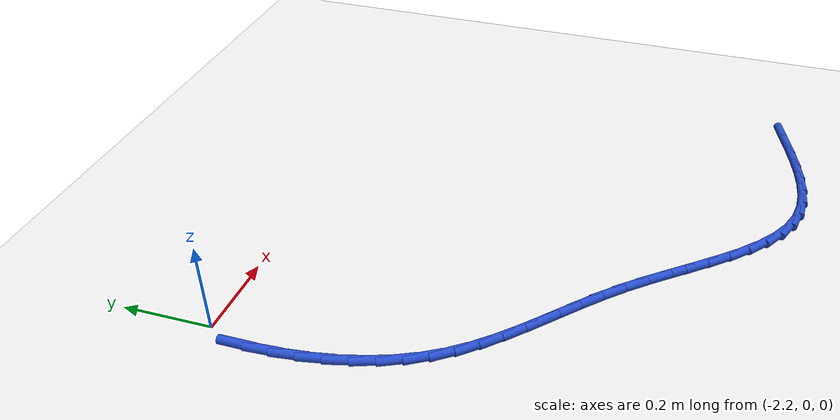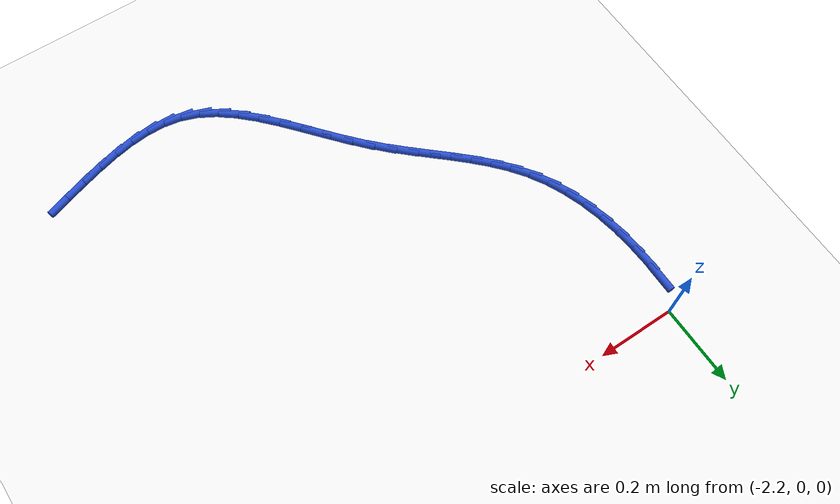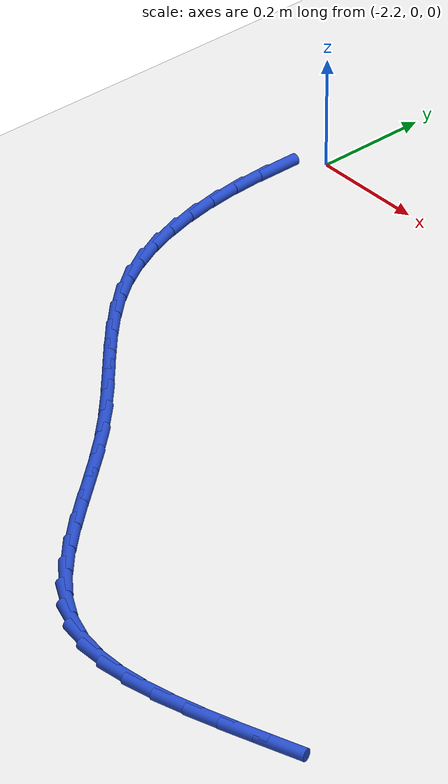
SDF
<sdf version="1.6">
 <world name="default">
  <model name="ground_plane">
   <static>1</static>
   <link name="link">
    <collision name="collision">
     <geometry><plane><normal>0 0 1</normal><size>100 100</size></plane></geometry>
     <surface><friction><ode><mu>100</mu><mu2>50</mu2></ode></friction></surface>
    </collision>
    <visual name="visual">
     <cast_shadows>0</cast_shadows>
     <geometry><plane><normal>0 0 1</normal><size>100 100</size></plane></geometry>
     <material>
      <script><uri>file://media/materials/scripts/gazebo.material</uri><name>Gazebo/WhiteGlow</name></script>
     </material>
    </visual>
   </link>
  </model>
  <model name="line">
   <link name="link_66">
    <pose>-2.2347366018024912 -0.07713305803702135 0.01 0 1.57 1.566625807912134</pose>
    <collision name="collision">
     <geometry><cylinder><radius>0.01</radius><length>0.08</length></cylinder></geometry>
    </collision>
    <visual name="visual">
     <material>
      <script><name>Gazebo/Blue</name><uri>file://media/materials/scripts/gazebo.material</uri></script>
     </material>
     <geometry><cylinder><radius>0.01</radius><length>0.08</length></cylinder></geometry>
    </visual>
   </link>
   <link name="link_67">
    <pose>-2.2349681033204614 -0.1326417806420662 0.01 0 1.57 -1.516333764548325</pose>
    <collision name="collision">
     <geometry><cylinder><radius>0.01</radius><length>0.08</length></cylinder></geometry>
    </collision>
    <visual name="visual">
     <material>
      <script><name>Gazebo/Blue</name><uri>file://media/materials/scripts/gazebo.material</uri></script>
     </material>
     <geometry><cylinder><radius>0.01</radius><length>0.08</length></cylinder></geometry>
    </visual>
   </link>
   <link name="link_68">
    <pose>-2.2319905329160266 -0.18725958974599724 0.01 0 1.57 -1.452149673449221</pose>
    <collision name="collision">
     <geometry><cylinder><radius>0.01</radius><length>0.08</length></cylinder></geometry>
    </collision>
    <visual name="visual">
     <material>
      <script><name>Gazebo/Blue</name><uri>file://media/materials/scripts/gazebo.material</uri></script>
     </material>
     <geometry><cylinder><radius>0.01</radius><length>0.08</length></cylinder></geometry>
    </visual>
   </link>
   <link name="link_69">
    <pose>-2.225624119887557 -0.24066616620373998 0.01 0 1.57 -1.3815692075701236</pose>
    <collision name="collision">
     <geometry><cylinder><radius>0.01</radius><length>0.08</length></cylinder></geometry>
    </collision>
    <visual name="visual">
     <material>
      <script><name>Gazebo/Blue</name><uri>file://media/materials/scripts/gazebo.material</uri></script>
     </material>
     <geometry><cylinder><radius>0.01</radius><length>0.08</length></cylinder></geometry>
    </visual>
   </link>
   <link name="link_70">
    <pose>-2.215689093533421 -0.2925411908702197 0.01 0 1.57 -1.3037865418248022</pose>
    <collision name="collision">
     <geometry><cylinder><radius>0.01</radius><length>0.08</length></cylinder></geometry>
    </collision>
    <visual name="visual">
     <material>
      <script><name>Gazebo/Blue</name><uri>file://media/materials/scripts/gazebo.material</uri></script>
     </material>
     <geometry><cylinder><radius>0.01</radius><length>0.08</length></cylinder></geometry>
    </visual>
   </link>
   <link name="link_71">
    <pose>-2.2020056831519885 -0.34256434460035956 0.01 0 1.57 -1.2181323554261085</pose>
    <collision name="collision">
     <geometry><cylinder><radius>0.01</radius><length>0.08</length></cylinder></geometry>
    </collision>
    <visual name="visual">
     <material>
      <script><name>Gazebo/Blue</name><uri>file://media/materials/scripts/gazebo.material</uri></script>
     </material>
     <geometry><cylinder><radius>0.01</radius><length>0.08</length></cylinder></geometry>
    </visual>
   </link>
   <link name="link_72">
    <pose>-2.1843941180416304 -0.39041530824908494 0.01 0 1.57 -1.1242186961335248</pose>
    <collision name="collision">
     <geometry><cylinder><radius>0.01</radius><length>0.08</length></cylinder></geometry>
    </collision>
    <visual name="visual">
     <material>
      <script><name>Gazebo/Blue</name><uri>file://media/materials/scripts/gazebo.material</uri></script>
     </material>
     <geometry><cylinder><radius>0.01</radius><length>0.08</length></cylinder></geometry>
    </visual>
   </link>
   <link name="link_73">
    <pose>-2.1626746275007145 -0.43577376267132034 0.01 0 1.57 -1.0221410222217915</pose>
    <collision name="collision">
     <geometry><cylinder><radius>0.01</radius><length>0.08</length></cylinder></geometry>
    </collision>
    <visual name="visual">
     <material>
      <script><name>Gazebo/Blue</name><uri>file://media/materials/scripts/gazebo.material</uri></script>
     </material>
     <geometry><cylinder><radius>0.01</radius><length>0.08</length></cylinder></geometry>
    </visual>
   </link>
   <link name="link_74">
    <pose>-2.136667966802116 -0.47831998935907033 0.01 0 1.57 -0.9197344098693156</pose>
    <collision name="collision">
     <geometry><cylinder><radius>0.01</radius><length>0.08</length></cylinder></geometry>
    </collision>
    <visual name="visual">
     <material>
      <script><name>Gazebo/Blue</name><uri>file://media/materials/scripts/gazebo.material</uri></script>
     </material>
     <geometry><cylinder><radius>0.01</radius><length>0.08</length></cylinder></geometry>
    </visual>
   </link>
   <link name="link_75">
    <pose>-2.10643235777262 -0.5180054449592808 0.01 0 1.57 -0.8369834766279696</pose>
    <collision name="collision">
     <geometry><cylinder><radius>0.01</radius><length>0.08</length></cylinder></geometry>
    </collision>
    <visual name="visual">
     <material>
      <script><name>Gazebo/Blue</name><uri>file://media/materials/scripts/gazebo.material</uri></script>
     </material>
     <geometry><cylinder><radius>0.01</radius><length>0.08</length></cylinder></geometry>
    </visual>
   </link>
   <link name="link_76">
    <pose>-2.0726375709729994 -0.5554799447717604 0.01 0 1.57 -0.7776468500098036</pose>
    <collision name="collision">
     <geometry><cylinder><radius>0.01</radius><length>0.08</length></cylinder></geometry>
    </collision>
    <visual name="visual">
     <material>
      <script><name>Gazebo/Blue</name><uri>file://media/materials/scripts/gazebo.material</uri></script>
     </material>
     <geometry><cylinder><radius>0.01</radius><length>0.08</length></cylinder></geometry>
    </visual>
   </link>
   <link name="link_77">
    <pose>-2.0360504801131163 -0.5915041911288976 0.01 0 1.57 -0.7411005974425477</pose>
    <collision name="collision">
     <geometry><cylinder><radius>0.01</radius><length>0.08</length></cylinder></geometry>
    </collision>
    <visual name="visual">
     <material>
      <script><name>Gazebo/Blue</name><uri>file://media/materials/scripts/gazebo.material</uri></script>
     </material>
     <geometry><cylinder><radius>0.01</radius><length>0.08</length></cylinder></geometry>
    </visual>
   </link>
   <link name="link_78">
    <pose>-1.9974379589028317 -0.6268388863630805 0.01 0 1.57 -0.7261501876739846</pose>
    <collision name="collision">
     <geometry><cylinder><radius>0.01</radius><length>0.08</length></cylinder></geometry>
    </collision>
    <visual name="visual">
     <material>
      <script><name>Gazebo/Blue</name><uri>file://media/materials/scripts/gazebo.material</uri></script>
     </material>
     <geometry><cylinder><radius>0.01</radius><length>0.08</length></cylinder></geometry>
    </visual>
   </link>
   <link name="link_79">
    <pose>-1.9575668810520095 -0.6622447328066958 0.01 0 1.57 -0.7315984849027605</pose>
    <collision name="collision">
     <geometry><cylinder><radius>0.01</radius><length>0.08</length></cylinder></geometry>
    </collision>
    <visual name="visual">
     <material>
      <script><name>Gazebo/Blue</name><uri>file://media/materials/scripts/gazebo.material</uri></script>
     </material>
     <geometry><cylinder><radius>0.01</radius><length>0.08</length></cylinder></geometry>
    </visual>
   </link>
   <link name="link_80">
    <pose>-1.9172041202705101 -0.6984824327921314 0.01 0 1.57 -0.7564358184620906</pose>
    <collision name="collision">
     <geometry><cylinder><radius>0.01</radius><length>0.08</length></cylinder></geometry>
    </collision>
    <visual name="visual">
     <material>
      <script><name>Gazebo/Blue</name><uri>file://media/materials/scripts/gazebo.material</uri></script>
     </material>
     <geometry><cylinder><radius>0.01</radius><length>0.08</length></cylinder></geometry>
    </visual>
   </link>
   <link name="link_81">
    <pose>-1.8771165502681966 -0.736312688651775 0.01 0 1.57 -0.7994552065078326</pose>
    <collision name="collision">
     <geometry><cylinder><radius>0.01</radius><length>0.08</length></cylinder></geometry>
    </collision>
    <visual name="visual">
     <material>
      <script><name>Gazebo/Blue</name><uri>file://media/materials/scripts/gazebo.material</uri></script>
     </material>
     <geometry><cylinder><radius>0.01</radius><length>0.08</length></cylinder></geometry>
    </visual>
   </link>
   <link name="link_82">
    <pose>-1.838061916970928 -0.7764810361633876 0.01 0 1.57 -0.844306440397865</pose>
    <collision name="collision">
     <geometry><cylinder><radius>0.01</radius><length>0.08</length></cylinder></geometry>
    </collision>
    <visual name="visual">
     <material>
      <script><name>Gazebo/Blue</name><uri>file://media/materials/scripts/gazebo.material</uri></script>
     </material>
     <geometry><cylinder><radius>0.01</radius><length>0.08</length></cylinder></geometry>
    </visual>
   </link>
   <link name="link_83">
    <pose>-1.8003253463726279 -0.8189477146939397 0.01 0 1.57 -0.8691442845476788</pose>
    <collision name="collision">
     <geometry><cylinder><radius>0.01</radius><length>0.08</length></cylinder></geometry>
    </collision>
    <visual name="visual">
     <material>
      <script><name>Gazebo/Blue</name><uri>file://media/materials/scripts/gazebo.material</uri></script>
     </material>
     <geometry><cylinder><radius>0.01</radius><length>0.08</length></cylinder></geometry>
    </visual>
   </link>
   <link name="link_84">
    <pose>-1.7634995765437713 -0.862522504828584 0.01 0 1.57 -0.8732130105804633</pose>
    <collision name="collision">
     <geometry><cylinder><radius>0.01</radius><length>0.08</length></cylinder></geometry>
    </collision>
    <visual name="visual">
     <material>
      <script><name>Gazebo/Blue</name><uri>file://media/materials/scripts/gazebo.material</uri></script>
     </material>
     <geometry><cylinder><radius>0.01</radius><length>0.08</length></cylinder></geometry>
    </visual>
   </link>
   <link name="link_85">
    <pose>-1.7271222451387844 -0.9059236333350591 0.01 0 1.57 -0.85618414837233</pose>
    <collision name="collision">
     <geometry><cylinder><radius>0.01</radius><length>0.08</length></cylinder></geometry>
    </collision>
    <visual name="visual">
     <material>
      <script><name>Gazebo/Blue</name><uri>file://media/materials/scripts/gazebo.material</uri></script>
     </material>
     <geometry><cylinder><radius>0.01</radius><length>0.08</length></cylinder></geometry>
    </visual>
   </link>
   <link name="link_86">
    <pose>-1.6907309898120961 -0.9478693269811054 0.01 0 1.57 -0.8161595690180491</pose>
    <collision name="collision">
     <geometry><cylinder><radius>0.01</radius><length>0.08</length></cylinder></geometry>
    </collision>
    <visual name="visual">
     <material>
      <script><name>Gazebo/Blue</name><uri>file://media/materials/scripts/gazebo.material</uri></script>
     </material>
     <geometry><cylinder><radius>0.01</radius><length>0.08</length></cylinder></geometry>
    </visual>
   </link>
   <link name="link_87">
    <pose>-1.653863448218133 -0.9870778125344597 0.01 0 1.57 -0.7495663786086596</pose>
    <collision name="collision">
     <geometry><cylinder><radius>0.01</radius><length>0.08</length></cylinder></geometry>
    </collision>
    <visual name="visual">
     <material>
      <script><name>Gazebo/Blue</name><uri>file://media/materials/scripts/gazebo.material</uri></script>
     </material>
     <geometry><cylinder><radius>0.01</radius><length>0.08</length></cylinder></geometry>
    </visual>
   </link>
   <link name="link_88">
    <pose>-1.6160572580113228 -1.0222673167628624 0.01 0 1.57 -0.6513444935324271</pose>
    <collision name="collision">
     <geometry><cylinder><radius>0.01</radius><length>0.08</length></cylinder></geometry>
    </collision>
    <visual name="visual">
     <material>
      <script><name>Gazebo/Blue</name><uri>file://media/materials/scripts/gazebo.material</uri></script>
     </material>
     <geometry><cylinder><radius>0.01</radius><length>0.08</length></cylinder></geometry>
    </visual>
   </link>
   <link name="link_89">
    <pose>-1.5768500568460935 -1.052156066434052 0.01 0 1.57 -0.5161550852151517</pose>
    <collision name="collision">
     <geometry><cylinder><radius>0.01</radius><length>0.08</length></cylinder></geometry>
    </collision>
    <visual name="visual">
     <material>
      <script><name>Gazebo/Blue</name><uri>file://media/materials/scripts/gazebo.material</uri></script>
     </material>
     <geometry><cylinder><radius>0.01</radius><length>0.08</length></cylinder></geometry>
    </visual>
   </link>
   <link name="link_90">
    <pose>-1.5357794823768716 -1.075462288315767 0.01 0 1.57 -0.34225911887109234</pose>
    <collision name="collision">
     <geometry><cylinder><radius>0.01</radius><length>0.08</length></cylinder></geometry>
    </collision>
    <visual name="visual">
     <material>
      <script><name>Gazebo/Blue</name><uri>file://media/materials/scripts/gazebo.material</uri></script>
     </material>
     <geometry><cylinder><radius>0.01</radius><length>0.08</length></cylinder></geometry>
    </visual>
   </link>
   <link name="link_91">
    <pose>-1.4923886713353367 -1.0909215975913684 0.01 0 1.57 -0.15734745621019489</pose>
    <collision name="collision">
     <geometry><cylinder><radius>0.01</radius><length>0.08</length></cylinder></geometry>
    </collision>
    <visual name="visual">
     <material>
      <script><name>Gazebo/Blue</name><uri>file://media/materials/scripts/gazebo.material</uri></script>
     </material>
     <geometry><cylinder><radius>0.01</radius><length>0.08</length></cylinder></geometry>
    </visual>
   </link>
   <link name="link_92">
    <pose>-1.4465149564582738 -1.0981998750461992 0.01 0 1.57 -0.0029853501706357493</pose>
    <collision name="collision">
     <geometry><cylinder><radius>0.01</radius><length>0.08</length></cylinder></geometry>
    </collision>
    <visual name="visual">
     <material>
      <script><name>Gazebo/Blue</name><uri>file://media/materials/scripts/gazebo.material</uri></script>
     </material>
     <geometry><cylinder><radius>0.01</radius><length>0.08</length></cylinder></geometry>
    </visual>
   </link>
   <link name="link_93">
    <pose>-1.398432226879807 -1.0983434192575883 0.01 0 1.57 0.1161764079561529</pose>
    <collision name="collision">
     <geometry><cylinder><radius>0.01</radius><length>0.08</length></cylinder></geometry>
    </collision>
    <visual name="visual">
     <material>
      <script><name>Gazebo/Blue</name><uri>file://media/materials/scripts/gazebo.material</uri></script>
     </material>
     <geometry><cylinder><radius>0.01</radius><length>0.08</length></cylinder></geometry>
    </visual>
   </link>
   <link name="link_94">
    <pose>-1.3484497405266593 -1.0925103670690752 0.01 0 1.57 0.2036691103154182</pose>
    <collision name="collision">
     <geometry><cylinder><radius>0.01</radius><length>0.08</length></cylinder></geometry>
    </collision>
    <visual name="visual">
     <material>
      <script><name>Gazebo/Blue</name><uri>file://media/materials/scripts/gazebo.material</uri></script>
     </material>
     <geometry><cylinder><radius>0.01</radius><length>0.08</length></cylinder></geometry>
    </visual>
   </link>
   <link name="link_95">
    <pose>-1.2968767553255554 -1.0818588553241992 0.01 0 1.57 0.26443811344516904</pose>
    <collision name="collision">
     <geometry><cylinder><radius>0.01</radius><length>0.08</length></cylinder></geometry>
    </collision>
    <visual name="visual">
     <material>
      <script><name>Gazebo/Blue</name><uri>file://media/materials/scripts/gazebo.material</uri></script>
     </material>
     <geometry><cylinder><radius>0.01</radius><length>0.08</length></cylinder></geometry>
    </visual>
   </link>
   <link name="link_96">
    <pose>-1.244022529203217 -1.0675470208664999 0.01 0 1.57 0.30277197136514006</pose>
    <collision name="collision">
     <geometry><cylinder><radius>0.01</radius><length>0.08</length></cylinder></geometry>
    </collision>
    <visual name="visual">
     <material>
      <script><name>Gazebo/Blue</name><uri>file://media/materials/scripts/gazebo.material</uri></script>
     </material>
     <geometry><cylinder><radius>0.01</radius><length>0.08</length></cylinder></geometry>
    </visual>
   </link>
   <link name="link_97">
    <pose>-1.1901963200863679 -1.050733000539516 0.01 0 1.57 0.3216694744968315</pose>
    <collision name="collision">
     <geometry><cylinder><radius>0.01</radius><length>0.08</length></cylinder></geometry>
    </collision>
    <visual name="visual">
     <material>
      <script><name>Gazebo/Blue</name><uri>file://media/materials/scripts/gazebo.material</uri></script>
     </material>
     <geometry><cylinder><radius>0.01</radius><length>0.08</length></cylinder></geometry>
    </visual>
   </link>
   <link name="link_98">
    <pose>-1.1357073859017306 -1.0325749311867867 0.01 0 1.57 0.32278703923538643</pose>
    <collision name="collision">
     <geometry><cylinder><radius>0.01</radius><length>0.08</length></cylinder></geometry>
    </collision>
    <visual name="visual">
     <material>
      <script><name>Gazebo/Blue</name><uri>file://media/materials/scripts/gazebo.material</uri></script>
     </material>
     <geometry><cylinder><radius>0.01</radius><length>0.08</length></cylinder></geometry>
    </visual>
   </link>
  </model>
 </world>
</sdf>
